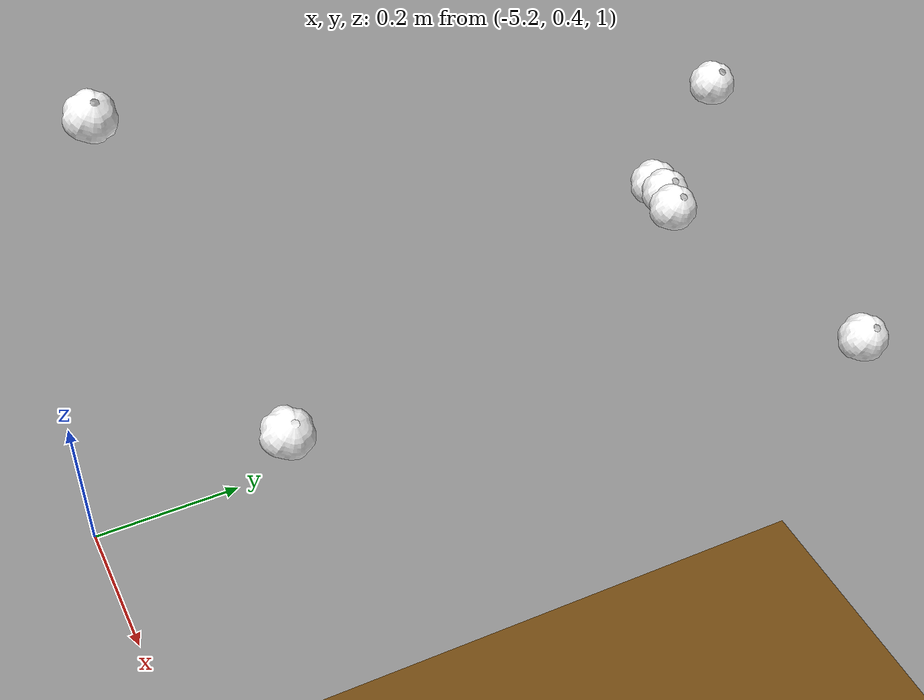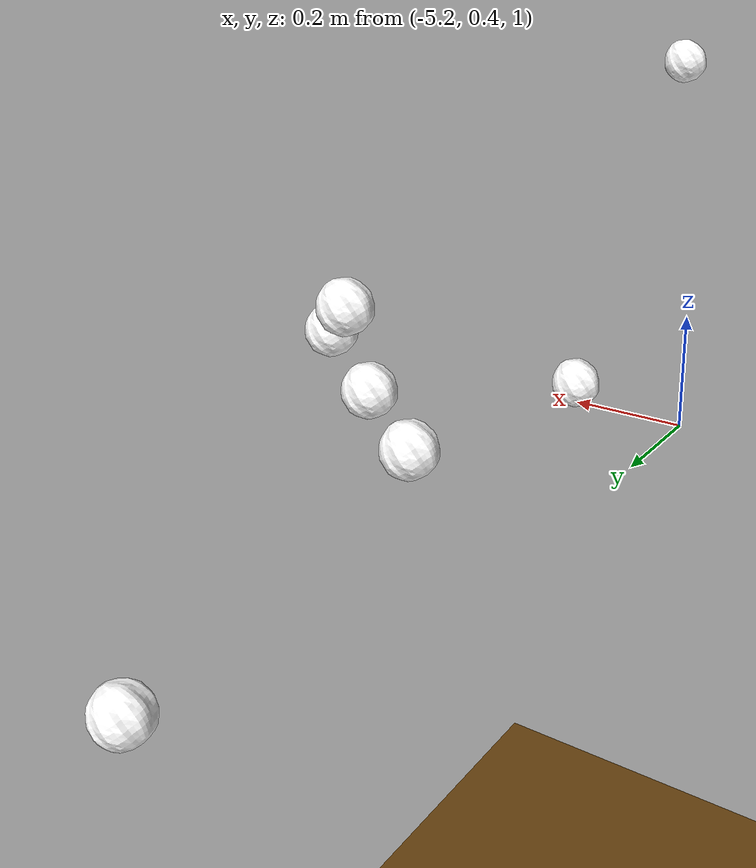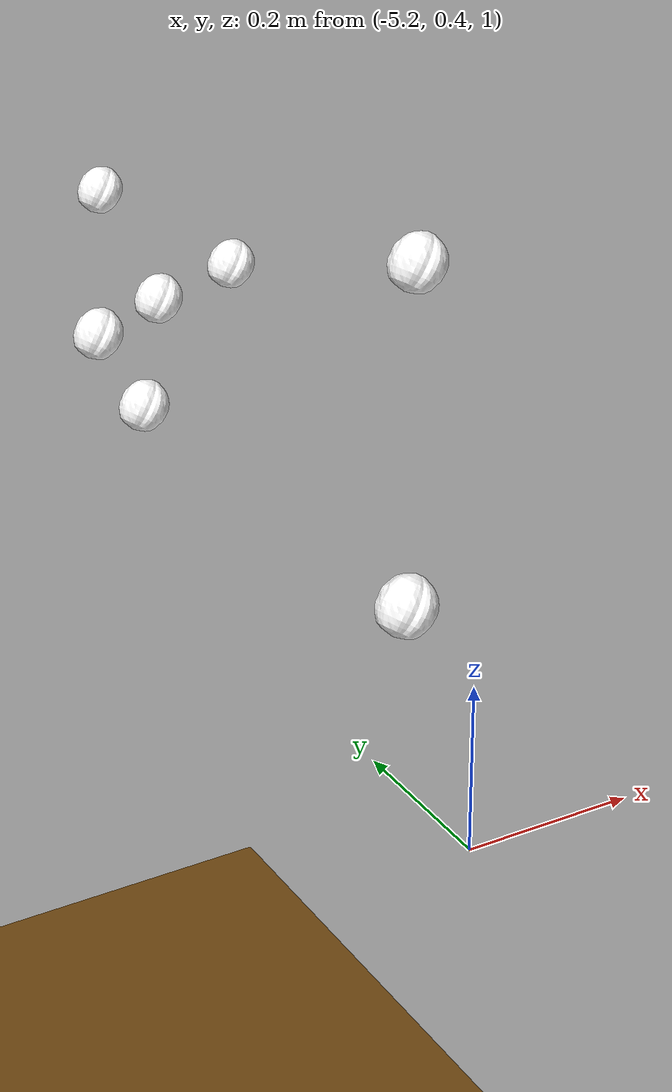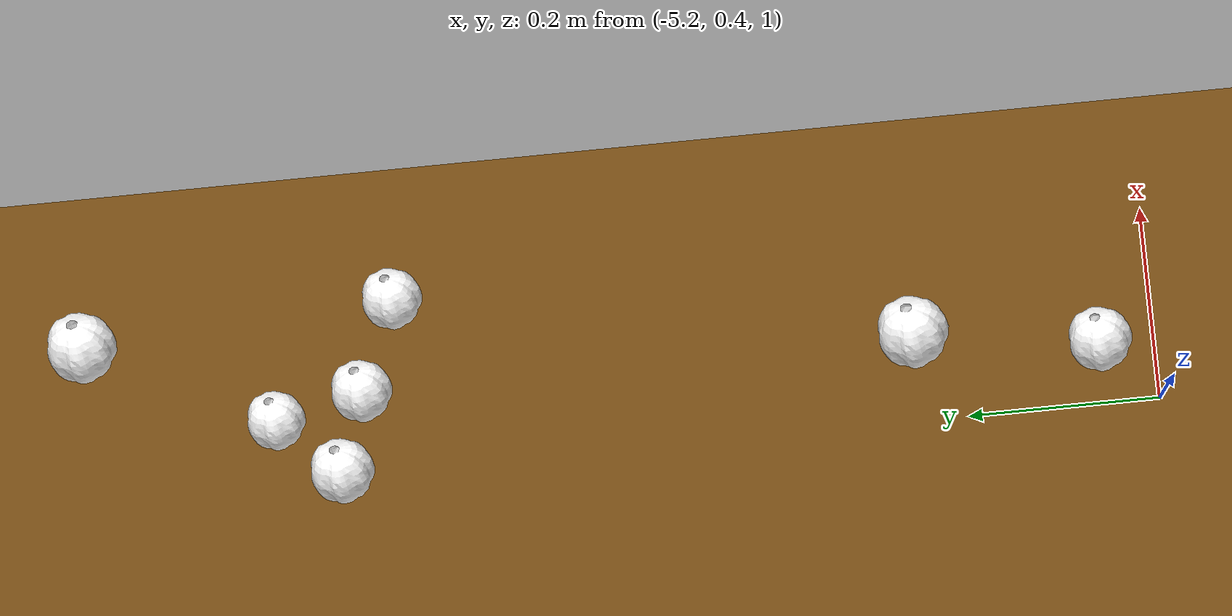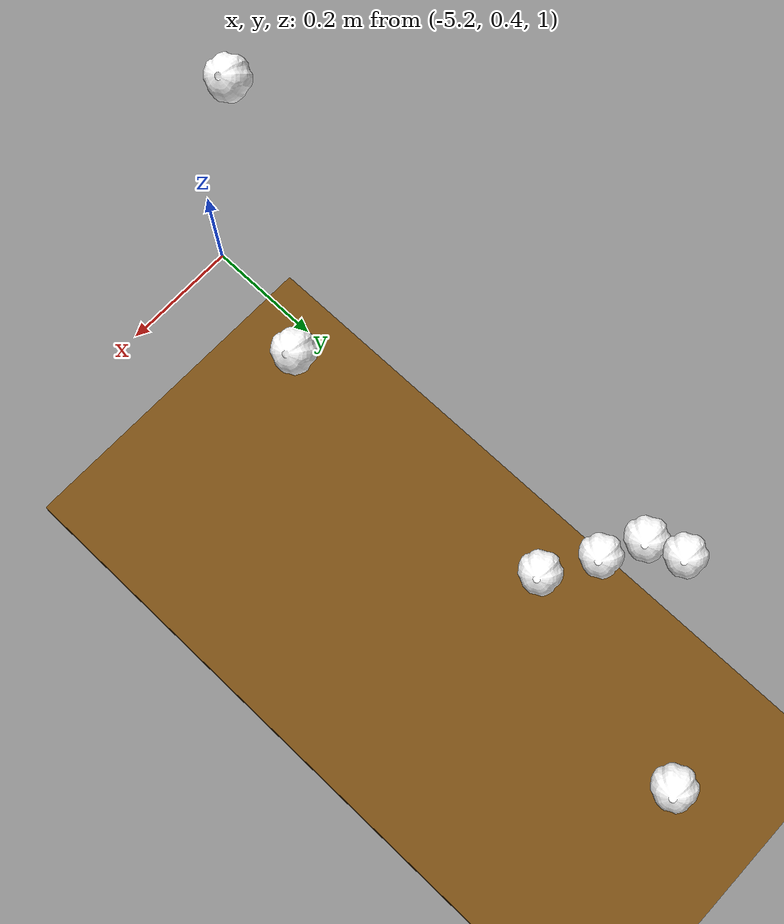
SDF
<sdf version="1.10">
 <world name="field">
  <model name="ground_plane">
   <static>true</static>
   <pose>0 0 -0.025 0 0 0</pose>
   <link name="ground_link">
    <collision name="collision"><geometry><box><size>22 14 0.05</size></box></geometry></collision>
    <visual name="visual">
     <geometry><box><size>22 14 0.05</size></box></geometry>
     <material><ambient>0.45 0.29 0.07 1</ambient><diffuse>0.45 0.29 0.07 1</diffuse></material>
    </visual>
   </link>
  </model>
  <model name="tomato_8_fruit_0">
   <static>true</static>
   <pose>-5.2109948184963049 0.50413313858912778 1.6337940091042895 0 0 0</pose>
   <link name="fruit_link">
    <collision name="fruit_collision">
     <geometry><sphere><radius>0.033434126757167316</radius></sphere></geometry>
    </collision>
    <visual name="fruit_visual">
     <geometry>
      <mesh>
       <uri>model://tomato_fruit/meshes/fruit.dae</uri>
       <scale>0.066868253514334633 0.066868253514334633 0.066868253514334633</scale>
      </mesh>
     </geometry>
     <material>
      <ambient>1 1 1 1</ambient>
      <diffuse>1 1 1 1</diffuse>
      <pbr>
       <metal>
        <albedo_map>model://tomato_0/materials/textures/AG15frt1.png</albedo_map>
        <metalness>0</metalness>
        <roughness>0.4</roughness>
       </metal>
      </pbr>
     </material>
    </visual>
   </link>
  </model>
  <model name="tomato_8_fruit_1">
   <static>true</static>
   <pose>-5.125056313327474 0.65643497820458185 1.1499657651593069 0 0 0</pose>
   <link name="fruit_link">
    <collision name="fruit_collision">
     <geometry><sphere><radius>0.040034666674444205</radius></sphere></geometry>
    </collision>
    <visual name="fruit_visual">
     <geometry>
      <mesh>
       <uri>model://tomato_fruit/meshes/fruit.dae</uri>
       <scale>0.080069333348888411 0.080069333348888411 0.080069333348888411</scale>
      </mesh>
     </geometry>
     <material>
      <ambient>1 1 1 1</ambient>
      <diffuse>1 1 1 1</diffuse>
      <pbr>
       <metal>
        <albedo_map>model://tomato_0/materials/textures/AG15frt1.png</albedo_map>
        <metalness>0</metalness>
        <roughness>0.4</roughness>
       </metal>
      </pbr>
     </material>
    </visual>
   </link>
  </model>
  <model name="tomato_9_fruit_0">
   <static>true</static>
   <pose>-5.1533917795622202 1.2201781622108596 1.3310810600612155 0 0 0</pose>
   <link name="fruit_link">
    <collision name="fruit_collision">
     <geometry><sphere><radius>0.033644958635935869</radius></sphere></geometry>
    </collision>
    <visual name="fruit_visual">
     <geometry>
      <mesh>
       <uri>model://tomato_fruit/meshes/fruit.dae</uri>
       <scale>0.067289917271871738 0.067289917271871738 0.067289917271871738</scale>
      </mesh>
     </geometry>
     <material>
      <ambient>1 1 1 1</ambient>
      <diffuse>1 1 1 1</diffuse>
      <pbr>
       <metal>
        <albedo_map>model://tomato_0/materials/textures/AG15frt1.png</albedo_map>
        <metalness>0</metalness>
        <roughness>0.4</roughness>
       </metal>
      </pbr>
     </material>
    </visual>
   </link>
  </model>
  <model name="tomato_9_fruit_1">
   <static>true</static>
   <pose>-5.2263122283842547 1.2476025075669157 1.2877715932348166 0 0 0</pose>
   <link name="fruit_link">
    <collision name="fruit_collision">
     <geometry><sphere><radius>0.035314463498843304</radius></sphere></geometry>
    </collision>
    <visual name="fruit_visual">
     <geometry>
      <mesh>
       <uri>model://tomato_fruit/meshes/fruit.dae</uri>
       <scale>0.070628926997686609 0.070628926997686609 0.070628926997686609</scale>
      </mesh>
     </geometry>
     <material>
      <ambient>1 1 1 1</ambient>
      <diffuse>1 1 1 1</diffuse>
      <pbr>
       <metal>
        <albedo_map>model://tomato_0/materials/textures/AG15frt1.png</albedo_map>
        <metalness>0</metalness>
        <roughness>0.4</roughness>
       </metal>
      </pbr>
     </material>
    </visual>
   </link>
  </model>
  <model name="tomato_9_fruit_2">
   <static>true</static>
   <pose>-5.0437062686383483 1.5101713873358478 1.0424288718539096 0 0 0</pose>
   <link name="fruit_link">
    <collision name="fruit_collision">
     <geometry><sphere><radius>0.039692696269424767</radius></sphere></geometry>
    </collision>
    <visual name="fruit_visual">
     <geometry>
      <mesh>
       <uri>model://tomato_fruit/meshes/fruit.dae</uri>
       <scale>0.079385392538849534 0.079385392538849534 0.079385392538849534</scale>
      </mesh>
     </geometry>
     <material>
      <ambient>1 1 1 1</ambient>
      <diffuse>1 1 1 1</diffuse>
      <pbr>
       <metal>
        <albedo_map>model://tomato_0/materials/textures/AG15frt1.png</albedo_map>
        <metalness>0</metalness>
        <roughness>0.4</roughness>
       </metal>
      </pbr>
     </material>
    </visual>
   </link>
  </model>
  <model name="tomato_9_fruit_3">
   <static>true</static>
   <pose>-5.0699668286299291 1.1807924761086608 1.3754000277372411 0 0 0</pose>
   <link name="fruit_link">
    <collision name="fruit_collision">
     <geometry><sphere><radius>0.032873851082124809</radius></sphere></geometry>
    </collision>
    <visual name="fruit_visual">
     <geometry>
      <mesh>
       <uri>model://tomato_fruit/meshes/fruit.dae</uri>
       <scale>0.065747702164249619 0.065747702164249619 0.065747702164249619</scale>
      </mesh>
     </geometry>
     <material>
      <ambient>1 1 1 1</ambient>
      <diffuse>1 1 1 1</diffuse>
      <pbr>
       <metal>
        <albedo_map>model://tomato_0/materials/textures/AG15frt1.png</albedo_map>
        <metalness>0</metalness>
        <roughness>0.4</roughness>
       </metal>
      </pbr>
     </material>
    </visual>
   </link>
  </model>
  <model name="tomato_9_fruit_4">
   <static>true</static>
   <pose>-5.1902379097761839 1.3038286082024917 1.4565014257989655 0 0 0</pose>
   <link name="fruit_link">
    <collision name="fruit_collision">
     <geometry><sphere><radius>0.031468630923024002</radius></sphere></geometry>
    </collision>
    <visual name="fruit_visual">
     <geometry>
      <mesh>
       <uri>model://tomato_fruit/meshes/fruit.dae</uri>
       <scale>0.062937261846048004 0.062937261846048004 0.062937261846048004</scale>
      </mesh>
     </geometry>
     <material>
      <ambient>1 1 1 1</ambient>
      <diffuse>1 1 1 1</diffuse>
      <pbr>
       <metal>
        <albedo_map>model://tomato_0/materials/textures/AG15frt1.png</albedo_map>
        <metalness>0</metalness>
        <roughness>0.4</roughness>
       </metal>
      </pbr>
     </material>
    </visual>
   </link>
  </model>
 </world>
</sdf>
